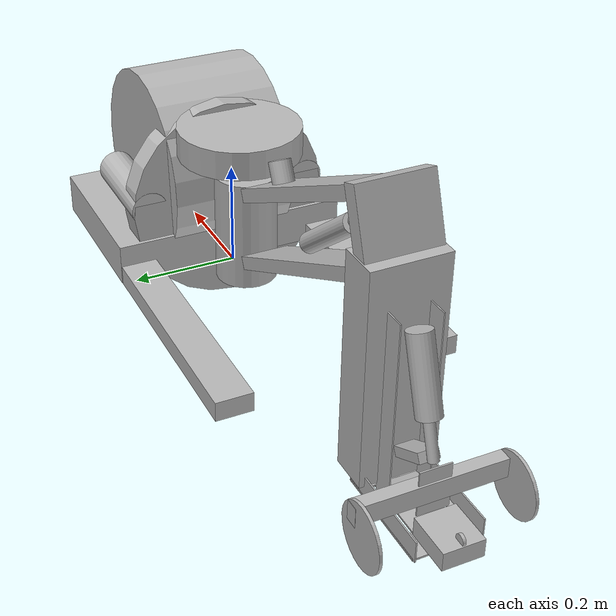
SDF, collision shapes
<sdf version="1.6">
  <model name="mir100_hook">
    <link name="root">
      <pose frame="">0 0 0 0 -0 0</pose>
      <inertial>
        <pose frame="">0.041003 -0.000587 0.107745 0 -0 0</pose>
        <mass>10.4</mass>
        <inertia>
          <ixx>0.0132281</ixx>
          <ixy>-0.0003299</ixy>
          <ixz>2.77e-05</ixz>
          <iyy>0.0183048</iyy>
          <iyz>-9.9e-06</iyz>
          <izz>0.0244622</izz>
        </inertia>
      </inertial>
      <collision name="root_fixed_joint_lump__collision_frame_1_collision">
        <pose frame="">-0.069 -0.1933 0.019755 0 -0 0</pose>
        <geometry>
          <box>
            <size>0.772 0.0687 0.03696</size>
          </box>
        </geometry>
      </collision>
      <collision name="root_fixed_joint_lump__collision_frame_2_collision_1">
        <pose frame="">-0.069 0.1933 0.019755 0 -0 0</pose>
        <geometry>
          <box>
            <size>0.772 0.0687 0.03696</size>
          </box>
        </geometry>
      </collision>
      <collision name="root_fixed_joint_lump__collision_frame_3_collision_2">
        <pose frame="">-0.040636 -9e-06 0.279281 0 -0 0</pose>
        <geometry>
          <cylinder>
            <length>0.05496</length>
            <radius>0.1158</radius>
          </cylinder>
        </geometry>
      </collision>
      <collision name="root_fixed_joint_lump__collision_frame_4_collision_3">
        <pose frame="">0.158063 -2e-06 0.041374 0 -0 0</pose>
        <geometry>
          <box>
            <size>0.31652 0.458 0.077</size>
          </box>
        </geometry>
      </collision>
      <collision name="root_fixed_joint_lump__collision_frame_5_collision_4">
        <pose frame="">0.169356 0 0.154775 1.5708 0.759218 0</pose>
        <geometry>
          <cylinder>
            <length>0.23816</length>
            <radius>0.18914</radius>
          </cylinder>
        </geometry>
      </collision>
      <collision name="root_fixed_joint_lump__collision_frame_6_collision_5">
        <pose frame="">0.109248 -0.161247 0.13939 1.5708 0.698132 1.5708</pose>
        <geometry>
          <cylinder>
            <length>0.19236</length>
            <radius>0.03474</radius>
          </cylinder>
        </geometry>
      </collision>
      <collision name="root_fixed_joint_lump__collision_frame_7_collision_6">
        <pose frame="">0.109248 0.161247 0.13939 1.5708 -0.698132 1.5708</pose>
        <geometry>
          <cylinder>
            <length>0.19236</length>
            <radius>0.03474</radius>
          </cylinder>
        </geometry>
      </collision>
      <collision name="root_fixed_joint_lump__collision_frame_8_collision_7">
        <pose frame="">0.038432 -2e-06 0.124659 1.65283 -0 1.5708</pose>
        <geometry>
          <cylinder>
            <length>0.05496</length>
            <radius>0.193</radius>
          </cylinder>
        </geometry>
      </collision>
      <visual name="root_fixed_joint_lump__visual_frame_visual">
        <pose frame="">-0.069 -2e-06 0.154775 0 -0 0</pose>
        <geometry>
          <mesh>
            <scale>1 1 1</scale>
            <uri>model://meshes/fbx/frame.fbx</uri>
          </mesh>
        </geometry>
      </visual>
    </link>
    <link name="pan_motor">
      <pose frame="">-0.067 -3e-06 0.138363 0 -0 0</pose>
      <inertial>
        <pose frame="">-0.020505 -2.9e-05 -0.018385 0 -0 0</pose>
        <mass>5.5</mass>
        <inertia>
          <ixx>0.0013133</ixx>
          <ixy>0.000168</ixy>
          <ixz>5e-07</ixz>
          <iyy>0.0014023</iyy>
          <iyz>-1.4e-06</iyz>
          <izz>0.000605</izz>
        </inertia>
      </inertial>
      <collision name="pan_motor_fixed_joint_lump__collision_pan_motor_collision">
        <pose frame="">0 0 -0.023878 0 -0 0</pose>
        <geometry>
          <cylinder>
            <length>0.214637</length>
            <radius>0.0589277</radius>
          </cylinder>
        </geometry>
      </collision>
      <visual name="pan_motor_fixed_joint_lump__visual_pan_motor_visual">
        <pose frame="">-0.020024 -0.000352 -0.003214 0 -0 0</pose>
        <geometry>
          <mesh>
            <scale>1 1 1</scale>
            <uri>model://meshes/fbx/pan_motor.fbx</uri>
          </mesh>
        </geometry>
      </visual>
    </link>
    <joint name="pan_motor_joint" type="revolute">
      <child>pan_motor</child>
      <parent>root</parent>
      <axis>
        <xyz>0 0 1</xyz>
        <limit>
          <lower>-1.5708</lower>
          <upper>1.5708</upper>
          <effort>100</effort>
          <velocity>6</velocity>
        </limit>
        <dynamics>
          <spring_reference>0</spring_reference>
          <spring_stiffness>0</spring_stiffness>
        </dynamics>
        <use_parent_model_frame>1</use_parent_model_frame>
      </axis>
    </joint>
    <link name="lift_arm_lower">
      <pose frame="">-0.144511 3e-05 0.081961 1.5708 -0 0</pose>
      <inertial>
        <pose frame="">-0.207215 0.10737 3.3e-05 0 -0 0</pose>
        <mass>1</mass>
        <inertia>
          <ixx>0.0003373</ixx>
          <ixy>-0.0006013</ixy>
          <ixz>0</ixz>
          <iyy>0.0014916</iyy>
          <iyz>0</iyz>
          <izz>0.0012083</izz>
        </inertia>
      </inertial>
      <collision name="lift_arm_lower_fixed_joint_lump__collision_lift_arm_lower_collision">
        <pose frame="">-0.209331 0.106738 3.3e-05 -1.5708 -0 -0.471239</pose>
        <geometry>
          <box>
            <size>0.44835 0.0915 0.024385</size>
          </box>
        </geometry>
      </collision>
      <visual name="lift_arm_lower_fixed_joint_lump__visual_lift_arm_lower_visual">
        <pose frame="">-0.209255 0.106738 3.3e-05 -1.5708 0 0</pose>
        <geometry>
          <mesh>
            <scale>1 1 1</scale>
            <uri>model://meshes/fbx/lift_lower_arm.fbx</uri>
          </mesh>
        </geometry>
      </visual>
    </link>
    <joint name="lift_arm_lower_joint" type="revolute">
      <child>lift_arm_lower</child>
      <parent>pan_motor</parent>
      <axis>
        <xyz>0 -1 -0</xyz>
        <limit>
          <lower>0</lower>
          <upper>0.523599</upper>
          <effort>100</effort>
          <velocity>6</velocity>
        </limit>
        <dynamics>
          <spring_reference>0</spring_reference>
          <spring_stiffness>0</spring_stiffness>
        </dynamics>
        <use_parent_model_frame>1</use_parent_model_frame>
      </axis>
    </joint>
    <link name="carriage">
      <pose frame="">-0.563108 -0 0.295624 1.5708 -0 0</pose>
      <inertial>
        <pose frame="">-0.008619 0.004713 0.001038 0 -0 0</pose>
        <mass>8.35</mass>
        <inertia>
          <ixx>0.0102801</ixx>
          <ixy>0.0005188</ixy>
          <ixz>-0.0035496</ixz>
          <iyy>0.0089798</iyy>
          <iyz>-7.18e-05</iyz>
          <izz>0.0049397</izz>
        </inertia>
      </inertial>
      <collision name="carriage_fixed_joint_lump__collision_carriage_1_collision">
        <pose frame="">-0.042414 0.089503 3e-06 -1.5708 -0 -0.349066</pose>
        <geometry>
          <box>
            <size>0.03052 0.13439 0.162844</size>
          </box>
        </geometry>
      </collision>
      <collision name="carriage_fixed_joint_lump__collision_carriage_2_collision_1">
        <pose frame="">-0.053809 -0.13627 0 -1.5708 0 0</pose>
        <geometry>
          <box>
            <size>0.07194 0.139106 0.396932</size>
          </box>
        </geometry>
      </collision>
      <collision name="carriage_fixed_joint_lump__collision_carriage_4_collision_2">
        <pose frame="">-0.021649 -0.283037 3e-06 -1.5708 0 0</pose>
        <geometry>
          <box>
            <size>0.00545 0.13741 0.086511</size>
          </box>
        </geometry>
      </collision>
      <collision name="carriage_fixed_joint_lump__collision_container_crawler_1_collision_3">
        <pose frame="">-0.184611 -0.28075 3e-06 -1.5708 0 0</pose>
        <geometry>
          <box>
            <size>0.0243 0.272 0.03627</size>
          </box>
        </geometry>
      </collision>
      <collision name="carriage_fixed_joint_lump__collision_container_crawler_2_collision_4">
        <pose frame="">-0.212973 -0.302873 0.132826 -0 -0 0.804597</pose>
        <geometry>
          <cylinder>
            <length>0.00544</length>
            <radius>0.05733</radius>
          </cylinder>
        </geometry>
      </collision>
      <collision name="carriage_fixed_joint_lump__collision_container_crawler_3_collision_5">
        <pose frame="">-0.212973 -0.302873 -0.132826 -0 -0 0.804597</pose>
        <geometry>
          <cylinder>
            <length>0.00544</length>
            <radius>0.05733</radius>
          </cylinder>
        </geometry>
      </collision>
      <collision name="carriage_fixed_joint_lump__collision_container_crawler_4_collision_6">
        <pose frame="">-0.192115 -0.278682 3e-06 -1.5708 0 0</pose>
        <geometry>
          <box>
            <size>0.0027 0.05712 0.08424</size>
          </box>
        </geometry>
      </collision>
      <collision name="carriage_fixed_joint_lump__collision_container_lock_1_collision_7">
        <pose frame="">-0.241435 -0.331425 -0.000296 -1.5708 0 0</pose>
        <geometry>
          <box>
            <size>0.08282 0.073393 0.033625</size>
          </box>
        </geometry>
      </collision>
      <collision name="carriage_fixed_joint_lump__collision_container_lock_2_collision_8">
        <pose frame="">-0.271374 -0.310815 -0.000296 -0 -0 -0.247837</pose>
        <geometry>
          <cylinder>
            <length>0.0055601</length>
            <radius>0.0100875</radius>
          </cylinder>
        </geometry>
      </collision>
      <collision name="carriage_fixed_joint_lump__collision_container_lock_3_collision_9">
        <pose frame="">-0.181923 -0.346613 -0.000296 -1.5708 0 0</pose>
        <geometry>
          <box>
            <size>0.19998 0.072281 0.003363</size>
          </box>
        </geometry>
      </collision>
      <collision name="carriage_fixed_joint_lump__collision_container_lock_4_collision_10">
        <pose frame="">-0.106719 -0.181047 0.036097 -1.5708 0 0</pose>
        <geometry>
          <box>
            <size>0.03838 0.002224 0.33625</size>
          </box>
        </geometry>
      </collision>
      <collision name="carriage_fixed_joint_lump__collision_container_lock_5_collision_11">
        <pose frame="">-0.106719 -0.181047 -0.036097 -1.5708 0 0</pose>
        <geometry>
          <box>
            <size>0.03838 0.002224 0.33625</size>
          </box>
        </geometry>
      </collision>
      <collision name="carriage_fixed_joint_lump__collision_fork_base_1_collision_12">
        <pose frame="">-0.216423 -0.354515 3e-06 -1.5708 0 0</pose>
        <geometry>
          <box>
            <size>0.05 0.12103 0.0034</size>
          </box>
        </geometry>
      </collision>
      <collision name="carriage_fixed_joint_lump__collision_fork_base_2_collision_13">
        <pose frame="">-0.061257 -0.354515 0 -1.5708 0 0</pose>
        <geometry>
          <box>
            <size>0.03 0.12103 0.0034</size>
          </box>
        </geometry>
      </collision>
      <collision name="carriage_fixed_joint_lump__collision_fork_base_3_collision_14">
        <pose frame="">-0.14406 -0.355083 -0.053405 -1.5708 0 0</pose>
        <geometry>
          <box>
            <size>0.194 0.01482 0.0034</size>
          </box>
        </geometry>
      </collision>
      <collision name="carriage_fixed_joint_lump__collision_fork_base_4_collision_15">
        <pose frame="">-0.143986 -0.354515 0.052922 -1.5708 0 0</pose>
        <geometry>
          <box>
            <size>0.194 0.01482 0.0034</size>
          </box>
        </geometry>
      </collision>
      <collision name="carriage_fixed_joint_lump__collision_fork_base_5_collision_16">
        <pose frame="">-0.04691 -0.315142 3e-06 -1.5708 0 0</pose>
        <geometry>
          <box>
            <size>0.004 0.12103 0.0816</size>
          </box>
        </geometry>
      </collision>
      <collision name="carriage_fixed_joint_lump__collision_fork_base_6_collision_17">
        <pose frame="">-0.145378 -0.336134 0.058856 -1.5708 0 0</pose>
        <geometry>
          <box>
            <size>0.2 0.00247 0.0391</size>
          </box>
        </geometry>
      </collision>
      <collision name="carriage_fixed_joint_lump__collision_fork_base_7_collision_18">
        <pose frame="">-0.145378 -0.336134 -0.058856 -1.5708 0 0</pose>
        <geometry>
          <box>
            <size>0.2 0.00247 0.0391</size>
          </box>
        </geometry>
      </collision>
      <collision name="carriage_fixed_joint_lump__collision_tilt_actuator_cylinder_collision_19">
        <pose frame="">-0.170188 -0.201547 0.001702 -1.5708 -0 -0.331613</pose>
        <geometry>
          <cylinder>
            <length>0.0686558</length>
            <radius>0.0093432</radius>
          </cylinder>
        </geometry>
      </collision>
      <collision name="carriage_fixed_joint_lump__collision_tilt_actuator_motor_collision_20">
        <pose frame="">-0.138106 -0.101872 0.001702 -1.5708 -0 -0.331612</pose>
        <geometry>
          <cylinder>
            <length>0.13608</length>
            <radius>0.0216029</radius>
          </cylinder>
        </geometry>
      </collision>
      <collision name="carriage_fixed_joint_lump__collision_tilt_arm_lower_collision_21">
        <pose frame="">-0.139071 -0.322423 3e-06 -1.5708 0 -0.326377</pose>
        <geometry>
          <box>
            <size>0.084407 0.056925 0.01379</size>
          </box>
        </geometry>
      </collision>
      <collision name="carriage_fixed_joint_lump__collision_tilt_arm_upper_collision_22">
        <pose frame="">-0.137535 -0.248382 3e-06 -1.5708 -0 -0.497419</pose>
        <geometry>
          <box>
            <size>0.075952 0.0368 0.017795</size>
          </box>
        </geometry>
      </collision>
      <visual name="carriage_fixed_joint_lump__visual_carriage_visual">
        <pose frame="">-0.034513 -0.082015 3e-06 -1.5708 0 0</pose>
        <geometry>
          <mesh>
            <scale>1 1 1</scale>
            <uri>model://meshes/fbx/carriage.fbx</uri>
          </mesh>
        </geometry>
      </visual>
      <visual name="carriage_fixed_joint_lump__visual_container_crawler_visual_1">
        <pose frame="">-0.206798 -0.289601 3e-06 -1.5708 0 0</pose>
        <geometry>
          <mesh>
            <scale>1 1 1</scale>
            <uri>model://meshes/fbx/container_crawler.fbx</uri>
          </mesh>
        </geometry>
      </visual>
      <visual name="carriage_fixed_joint_lump__visual_container_lock_visual_2">
        <pose frame="">-0.181881 -0.180375 -0.000269 -1.5708 0 0</pose>
        <geometry>
          <mesh>
            <scale>1 1 1</scale>
            <uri>model://meshes/fbx/container_lock.fbx</uri>
          </mesh>
        </geometry>
      </visual>
      <visual name="carriage_fixed_joint_lump__visual_fork_base_visual_3">
        <pose frame="">-0.14489 -0.2715 3e-06 -1.5708 0 0</pose>
        <geometry>
          <mesh>
            <scale>1 1 1</scale>
            <uri>model://meshes/fbx/fork_base.fbx</uri>
          </mesh>
        </geometry>
      </visual>
      <visual name="carriage_fixed_joint_lump__visual_tilt_actuator_cylinder_visual_4">
        <pose frame="">-0.167665 -0.194474 0.001702 -1.5708 0 0</pose>
        <geometry>
          <mesh>
            <scale>1 1 1</scale>
            <uri>model://meshes/fbx/Part__Feature079.fbx</uri>
          </mesh>
        </geometry>
      </visual>
      <visual name="carriage_fixed_joint_lump__visual_tilt_actuator_motor_visual_5">
        <pose frame="">-0.115885 -0.095356 0.001702 -1.5708 0 0</pose>
        <geometry>
          <mesh>
            <scale>1 1 1</scale>
            <uri>model://meshes/fbx/Part__Feature078.fbx</uri>
          </mesh>
        </geometry>
      </visual>
      <visual name="carriage_fixed_joint_lump__visual_tilt_arm_lower_visual_6">
        <pose frame="">-0.13785 -0.32126 3e-06 -1.5708 0 0</pose>
        <geometry>
          <mesh>
            <scale>1 1 1</scale>
            <uri>model://meshes/fbx/tilt_arm_lower.fbx</uri>
          </mesh>
        </geometry>
      </visual>
      <visual name="carriage_fixed_joint_lump__visual_tilt_arm_upper_visual_7">
        <pose frame="">-0.140431 -0.245335 3e-06 -1.5708 0 0</pose>
        <geometry>
          <mesh>
            <scale>1 1 1</scale>
            <uri>model://meshes/fbx/Part__Feature158.fbx</uri>
          </mesh>
        </geometry>
      </visual>
    </link>
    <joint name="carriage_joint" type="revolute">
      <child>carriage</child>
      <parent>lift_arm_lower</parent>
      <axis>
        <xyz>0 -1 -0</xyz>
        <limit>
          <lower>-0.523599</lower>
          <upper>0</upper>
          <effort>0</effort>
          <velocity>0</velocity>
        </limit>
        <dynamics>
          <spring_reference>0</spring_reference>
          <spring_stiffness>0</spring_stiffness>
        </dynamics>
        <use_parent_model_frame>1</use_parent_model_frame>
      </axis>
    </joint>
    <link name="lift_motor_joint">
      <pose frame="">-0.320112 -0 0.210208 1.5708 -0 0</pose>
      <inertial>
        <pose frame="">-0.028832 0.033894 0.011049 0 -0 0</pose>
        <mass>0.55</mass>
        <inertia>
          <ixx>0.0001287</ixx>
          <ixy>-3.9e-06</ixy>
          <ixz>3.2e-05</ixz>
          <iyy>0.0001894</iyy>
          <iyz>4.65e-05</iyz>
          <izz>8.17e-05</izz>
        </inertia>
      </inertial>
      <collision name="lift_motor_joint_fixed_joint_lump__collision_lift_actuator_cylinder_collision">
        <pose frame="">-0.190074 0.149046 3e-06 -1.5708 0 -2.23751</pose>
        <geometry>
          <cylinder>
            <length>0.10763</length>
            <radius>0.0096713</radius>
          </cylinder>
        </geometry>
      </collision>
      <collision name="lift_motor_joint_fixed_joint_lump__collision_lift_actuator_motor_collision_1">
        <pose frame="">-0.083919 0.062095 3e-06 -1.5708 0 -2.23751</pose>
        <geometry>
          <cylinder>
            <length>0.18732</length>
            <radius>0.0186919</radius>
          </cylinder>
        </geometry>
      </collision>
      <visual name="lift_motor_joint_fixed_joint_lump__visual_lift_actuator_cylinder_visual">
        <pose frame="">-0.18108 0.142421 8e-06 -1.5708 0 0</pose>
        <geometry>
          <mesh>
            <scale>1 1 1</scale>
            <uri>model://meshes/fbx/Part__Feature063.fbx</uri>
          </mesh>
        </geometry>
      </visual>
      <visual name="lift_motor_joint_fixed_joint_lump__visual_lift_actuator_motor_visual_1">
        <pose frame="">-0.070637 0.061273 3e-06 -1.5708 0 0</pose>
        <geometry>
          <mesh>
            <scale>1 1 1</scale>
            <uri>model://meshes/fbx/Part__Feature062.fbx</uri>
          </mesh>
        </geometry>
      </visual>
    </link>
    <joint name="lift_motor_joint_joint" type="revolute">
      <child>lift_motor_joint</child>
      <parent>lift_arm_lower</parent>
      <axis>
        <xyz>0 -1 -0</xyz>
        <limit>
          <lower>-0.523599</lower>
          <upper>0.523599</upper>
          <effort>100</effort>
          <velocity>6</velocity>
        </limit>
        <dynamics>
          <spring_reference>0</spring_reference>
          <spring_stiffness>0</spring_stiffness>
        </dynamics>
        <use_parent_model_frame>1</use_parent_model_frame>
      </axis>
    </joint>
    <link name="lift_arm_upper">
      <pose frame="">-0.144511 -3e-06 0.221609 1.5708 -0 0</pose>
      <inertial>
        <pose frame="">-0.139777 0.076913 -9.9e-05 0 -0 0</pose>
        <mass>2.2</mass>
        <inertia>
          <ixx>0.0009413</ixx>
          <ixy>-0.0006054</ixy>
          <ixz>0.0005665</ixz>
          <iyy>0.0032542</iyy>
          <iyz>-1.06e-05</iyz>
          <izz>0.0025802</izz>
        </inertia>
      </inertial>
      <collision name="lift_arm_upper_fixed_joint_lump__collision_emergency_stop_collision">
        <pose frame="">-0.077 0.072108 -0.000214 -1.5708 -0 -0.471239</pose>
        <geometry>
          <cylinder>
            <length>0.0454842</length>
            <radius>0.0200511</radius>
          </cylinder>
        </geometry>
      </collision>
      <collision name="lift_arm_upper_fixed_joint_lump__collision_lift_arm_upper_collision_1">
        <pose frame="">-0.209254 0.10621 0 -1.5708 -0 -0.471239</pose>
        <geometry>
          <box>
            <size>0.44835 0.0915 0.025162</size>
          </box>
        </geometry>
      </collision>
      <visual name="lift_arm_upper_fixed_joint_lump__visual_emergency_stop_visual">
        <pose frame="">-0.073294 0.074537 -5.6e-05 -1.5708 0 0</pose>
        <geometry>
          <mesh>
            <scale>1 1 1</scale>
            <uri>model://meshes/fbx/emergency_stop.fbx</uri>
          </mesh>
        </geometry>
      </visual>
      <visual name="lift_arm_upper_fixed_joint_lump__visual_lift_arm_upper_visual_1">
        <pose frame="">-0.209254 0.102748 0 -1.5708 0 0</pose>
        <geometry>
          <mesh>
            <scale>1 1 1</scale>
            <uri>model://meshes/fbx/lift_arm_upper.fbx</uri>
          </mesh>
        </geometry>
      </visual>
    </link>
    <joint name="lift_arm_upper_joint" type="revolute">
      <child>lift_arm_upper</child>
      <parent>pan_motor</parent>
      <axis>
        <xyz>0 -1 -0</xyz>
        <limit>
          <lower>-1.5708</lower>
          <upper>1.5708</upper>
          <effort>100</effort>
          <velocity>6</velocity>
        </limit>
        <dynamics>
          <spring_reference>0</spring_reference>
          <spring_stiffness>0</spring_stiffness>
        </dynamics>
        <use_parent_model_frame>1</use_parent_model_frame>
      </axis>
    </joint>
  </model>
</sdf>
